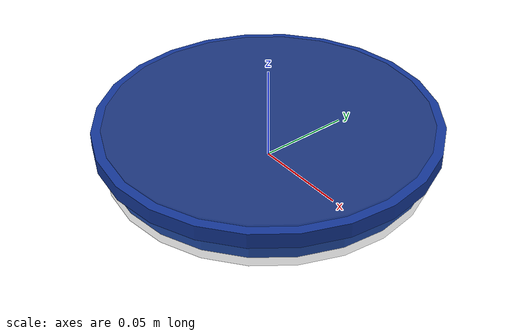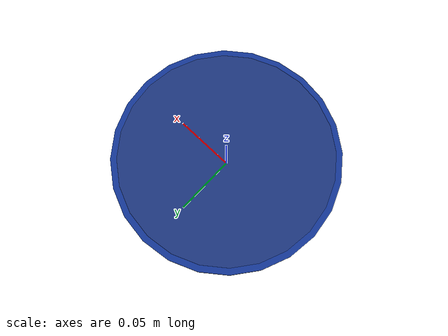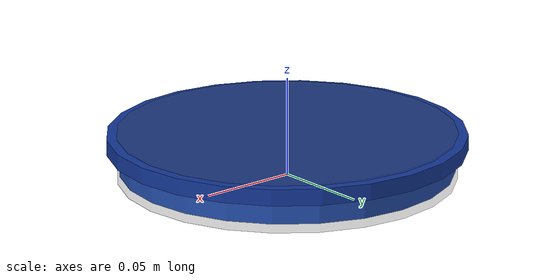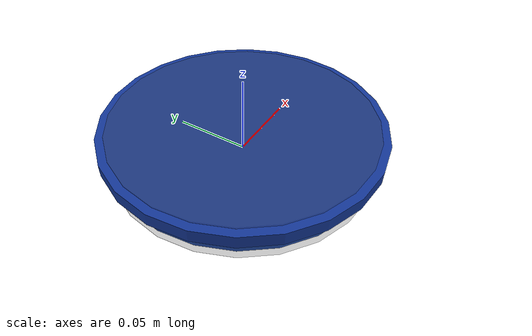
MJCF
<mujoco model="plate">
  <compiler autolimits="true"/>
  <default>
    <geom friction="0.9 0.01 0.001" condim="3" solref="0.008 1" solimp="0.90 0.95 0.001" margin="0.001"/>
  </default>
  <worldbody>
    <body name="plate" pos="0 0 0.012">
      <freejoint/>
      <inertial pos="0 0 0" mass="0.16" diaginertia="0.00038 0.00038 0.00072"/>
      <geom name="plate_collision" type="cylinder" size="0.085 0.012" rgba="0.25 0.25 0.25 0.25"/>
      <geom name="plate_visual" type="cylinder" size="0.084 0.008" contype="0" conaffinity="0" group="1" rgba="0.12 0.35 0.85 0.92"/>
      <geom name="plate_visual_rim" type="cylinder" size="0.090 0.004" pos="0 0 0.007" contype="0" conaffinity="0" group="1" rgba="0.08 0.22 0.60 0.90"/>
    </body>
  </worldbody>
</mujoco>
